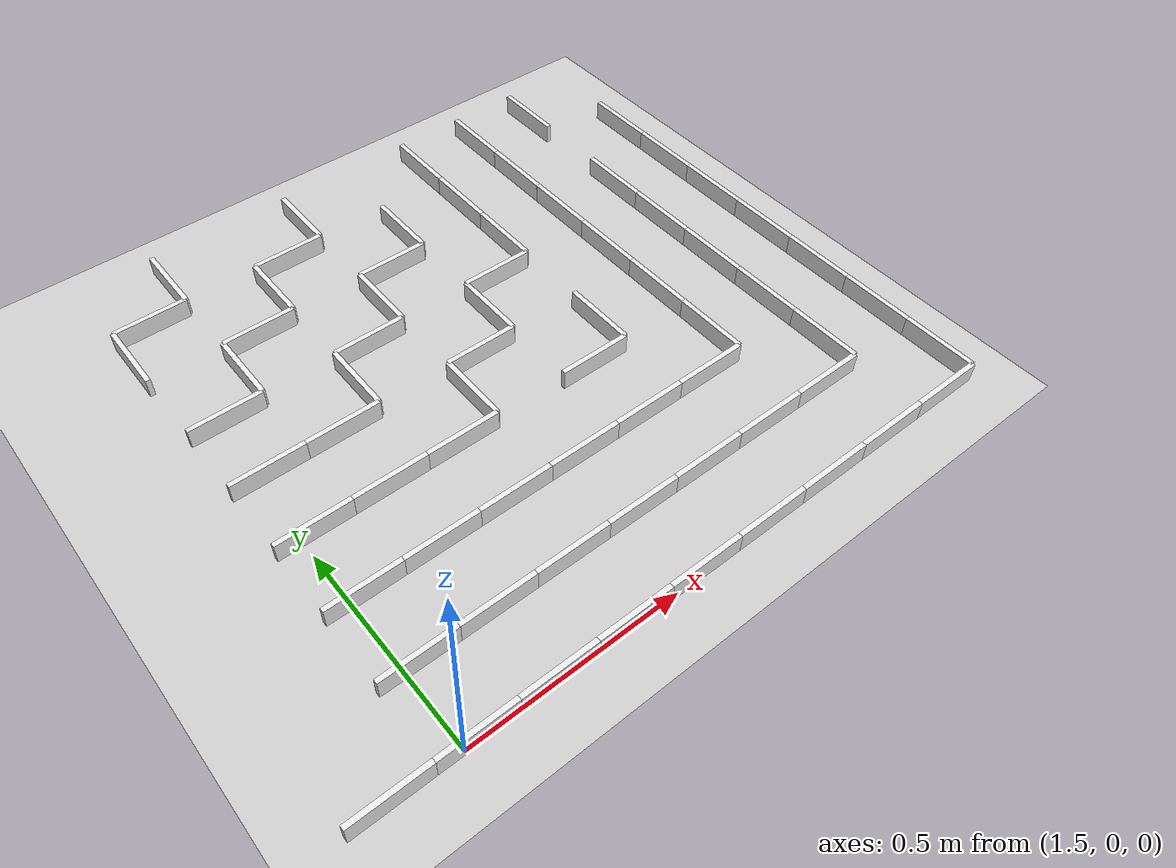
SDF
<sdf version="1.4">
 <world name="default">
  <include><uri>model://ground_plane</uri></include>
  <model name="wall">
   <pose>1.53 1.26 0.025 0 0 0</pose>
   <link name="link">
    <inertial>
     <mass>10</mass>
     <inertia><ixx>1</ixx><ixy>0</ixy><ixz>0</ixz><iyy>1</iyy><iyz>0</iyz><izz>1</izz></inertia>
    </inertial>
    <collision name="collision"><geometry><box><size>0.180 0.012 0.050</size></box></geometry></collision>
    <visual name="visual">
     <geometry><box><size>0.180 0.012 0.050</size></box></geometry>
     <material>
      <script><uri>file://media/materials/scripts/gazebo.material</uri><name>Gazebo/White</name></script>
     </material>
    </visual>
    <velocity_decay><linear>0</linear><angular>0</angular></velocity_decay>
   </link>
   <static>1</static>
  </model>
  <model name="wall">
   <pose>1.89 1.26 0.025 0 0 0</pose>
   <link name="link">
    <inertial>
     <mass>10</mass>
     <inertia><ixx>1</ixx><ixy>0</ixy><ixz>0</ixz><iyy>1</iyy><iyz>0</iyz><izz>1</izz></inertia>
    </inertial>
    <collision name="collision"><geometry><box><size>0.180 0.012 0.050</size></box></geometry></collision>
    <visual name="visual">
     <geometry><box><size>0.180 0.012 0.050</size></box></geometry>
     <material>
      <script><uri>file://media/materials/scripts/gazebo.material</uri><name>Gazebo/White</name></script>
     </material>
    </visual>
    <velocity_decay><linear>0</linear><angular>0</angular></velocity_decay>
   </link>
   <static>1</static>
  </model>
  <model name="wall">
   <pose>1.71 1.08 0.025 0 0 0</pose>
   <link name="link">
    <inertial>
     <mass>10</mass>
     <inertia><ixx>1</ixx><ixy>0</ixy><ixz>0</ixz><iyy>1</iyy><iyz>0</iyz><izz>1</izz></inertia>
    </inertial>
    <collision name="collision"><geometry><box><size>0.180 0.012 0.050</size></box></geometry></collision>
    <visual name="visual">
     <geometry><box><size>0.180 0.012 0.050</size></box></geometry>
     <material>
      <script><uri>file://media/materials/scripts/gazebo.material</uri><name>Gazebo/White</name></script>
     </material>
    </visual>
    <velocity_decay><linear>0</linear><angular>0</angular></velocity_decay>
   </link>
   <static>1</static>
  </model>
  <model name="wall">
   <pose>2.07 1.08 0.025 0 0 0</pose>
   <link name="link">
    <inertial>
     <mass>10</mass>
     <inertia><ixx>1</ixx><ixy>0</ixy><ixz>0</ixz><iyy>1</iyy><iyz>0</iyz><izz>1</izz></inertia>
    </inertial>
    <collision name="collision"><geometry><box><size>0.180 0.012 0.050</size></box></geometry></collision>
    <visual name="visual">
     <geometry><box><size>0.180 0.012 0.050</size></box></geometry>
     <material>
      <script><uri>file://media/materials/scripts/gazebo.material</uri><name>Gazebo/White</name></script>
     </material>
    </visual>
    <velocity_decay><linear>0</linear><angular>0</angular></velocity_decay>
   </link>
   <static>1</static>
  </model>
  <model name="wall">
   <pose>1.53 0.9 0.025 0 0 0</pose>
   <link name="link">
    <inertial>
     <mass>10</mass>
     <inertia><ixx>1</ixx><ixy>0</ixy><ixz>0</ixz><iyy>1</iyy><iyz>0</iyz><izz>1</izz></inertia>
    </inertial>
    <collision name="collision"><geometry><box><size>0.180 0.012 0.050</size></box></geometry></collision>
    <visual name="visual">
     <geometry><box><size>0.180 0.012 0.050</size></box></geometry>
     <material>
      <script><uri>file://media/materials/scripts/gazebo.material</uri><name>Gazebo/White</name></script>
     </material>
    </visual>
    <velocity_decay><linear>0</linear><angular>0</angular></velocity_decay>
   </link>
   <static>1</static>
  </model>
  <model name="wall">
   <pose>1.89 0.9 0.025 0 0 0</pose>
   <link name="link">
    <inertial>
     <mass>10</mass>
     <inertia><ixx>1</ixx><ixy>0</ixy><ixz>0</ixz><iyy>1</iyy><iyz>0</iyz><izz>1</izz></inertia>
    </inertial>
    <collision name="collision"><geometry><box><size>0.180 0.012 0.050</size></box></geometry></collision>
    <visual name="visual">
     <geometry><box><size>0.180 0.012 0.050</size></box></geometry>
     <material>
      <script><uri>file://media/materials/scripts/gazebo.material</uri><name>Gazebo/White</name></script>
     </material>
    </visual>
    <velocity_decay><linear>0</linear><angular>0</angular></velocity_decay>
   </link>
   <static>1</static>
  </model>
  <model name="wall">
   <pose>2.25 0.9 0.025 0 0 0</pose>
   <link name="link">
    <inertial>
     <mass>10</mass>
     <inertia><ixx>1</ixx><ixy>0</ixy><ixz>0</ixz><iyy>1</iyy><iyz>0</iyz><izz>1</izz></inertia>
    </inertial>
    <collision name="collision"><geometry><box><size>0.180 0.012 0.050</size></box></geometry></collision>
    <visual name="visual">
     <geometry><box><size>0.180 0.012 0.050</size></box></geometry>
     <material>
      <script><uri>file://media/materials/scripts/gazebo.material</uri><name>Gazebo/White</name></script>
     </material>
    </visual>
    <velocity_decay><linear>0</linear><angular>0</angular></velocity_decay>
   </link>
   <static>1</static>
  </model>
  <model name="wall">
   <pose>1.53 0.72 0.025 0 0 0</pose>
   <link name="link">
    <inertial>
     <mass>10</mass>
     <inertia><ixx>1</ixx><ixy>0</ixy><ixz>0</ixz><iyy>1</iyy><iyz>0</iyz><izz>1</izz></inertia>
    </inertial>
    <collision name="collision"><geometry><box><size>0.180 0.012 0.050</size></box></geometry></collision>
    <visual name="visual">
     <geometry><box><size>0.180 0.012 0.050</size></box></geometry>
     <material>
      <script><uri>file://media/materials/scripts/gazebo.material</uri><name>Gazebo/White</name></script>
     </material>
    </visual>
    <velocity_decay><linear>0</linear><angular>0</angular></velocity_decay>
   </link>
   <static>1</static>
  </model>
  <model name="wall">
   <pose>1.71 0.72 0.025 0 0 0</pose>
   <link name="link">
    <inertial>
     <mass>10</mass>
     <inertia><ixx>1</ixx><ixy>0</ixy><ixz>0</ixz><iyy>1</iyy><iyz>0</iyz><izz>1</izz></inertia>
    </inertial>
    <collision name="collision"><geometry><box><size>0.180 0.012 0.050</size></box></geometry></collision>
    <visual name="visual">
     <geometry><box><size>0.180 0.012 0.050</size></box></geometry>
     <material>
      <script><uri>file://media/materials/scripts/gazebo.material</uri><name>Gazebo/White</name></script>
     </material>
    </visual>
    <velocity_decay><linear>0</linear><angular>0</angular></velocity_decay>
   </link>
   <static>1</static>
  </model>
  <model name="wall">
   <pose>2.07 0.72 0.025 0 0 0</pose>
   <link name="link">
    <inertial>
     <mass>10</mass>
     <inertia><ixx>1</ixx><ixy>0</ixy><ixz>0</ixz><iyy>1</iyy><iyz>0</iyz><izz>1</izz></inertia>
    </inertial>
    <collision name="collision"><geometry><box><size>0.180 0.012 0.050</size></box></geometry></collision>
    <visual name="visual">
     <geometry><box><size>0.180 0.012 0.050</size></box></geometry>
     <material>
      <script><uri>file://media/materials/scripts/gazebo.material</uri><name>Gazebo/White</name></script>
     </material>
    </visual>
    <velocity_decay><linear>0</linear><angular>0</angular></velocity_decay>
   </link>
   <static>1</static>
  </model>
  <model name="wall">
   <pose>1.53 0.54 0.025 0 0 0</pose>
   <link name="link">
    <inertial>
     <mass>10</mass>
     <inertia><ixx>1</ixx><ixy>0</ixy><ixz>0</ixz><iyy>1</iyy><iyz>0</iyz><izz>1</izz></inertia>
    </inertial>
    <collision name="collision"><geometry><box><size>0.180 0.012 0.050</size></box></geometry></collision>
    <visual name="visual">
     <geometry><box><size>0.180 0.012 0.050</size></box></geometry>
     <material>
      <script><uri>file://media/materials/scripts/gazebo.material</uri><name>Gazebo/White</name></script>
     </material>
    </visual>
    <velocity_decay><linear>0</linear><angular>0</angular></velocity_decay>
   </link>
   <static>1</static>
  </model>
  <model name="wall">
   <pose>1.71 0.54 0.025 0 0 0</pose>
   <link name="link">
    <inertial>
     <mass>10</mass>
     <inertia><ixx>1</ixx><ixy>0</ixy><ixz>0</ixz><iyy>1</iyy><iyz>0</iyz><izz>1</izz></inertia>
    </inertial>
    <collision name="collision"><geometry><box><size>0.180 0.012 0.050</size></box></geometry></collision>
    <visual name="visual">
     <geometry><box><size>0.180 0.012 0.050</size></box></geometry>
     <material>
      <script><uri>file://media/materials/scripts/gazebo.material</uri><name>Gazebo/White</name></script>
     </material>
    </visual>
    <velocity_decay><linear>0</linear><angular>0</angular></velocity_decay>
   </link>
   <static>1</static>
  </model>
  <model name="wall">
   <pose>1.89 0.54 0.025 0 0 0</pose>
   <link name="link">
    <inertial>
     <mass>10</mass>
     <inertia><ixx>1</ixx><ixy>0</ixy><ixz>0</ixz><iyy>1</iyy><iyz>0</iyz><izz>1</izz></inertia>
    </inertial>
    <collision name="collision"><geometry><box><size>0.180 0.012 0.050</size></box></geometry></collision>
    <visual name="visual">
     <geometry><box><size>0.180 0.012 0.050</size></box></geometry>
     <material>
      <script><uri>file://media/materials/scripts/gazebo.material</uri><name>Gazebo/White</name></script>
     </material>
    </visual>
    <velocity_decay><linear>0</linear><angular>0</angular></velocity_decay>
   </link>
   <static>1</static>
  </model>
  <model name="wall">
   <pose>2.25 0.54 0.025 0 0 0</pose>
   <link name="link">
    <inertial>
     <mass>10</mass>
     <inertia><ixx>1</ixx><ixy>0</ixy><ixz>0</ixz><iyy>1</iyy><iyz>0</iyz><izz>1</izz></inertia>
    </inertial>
    <collision name="collision"><geometry><box><size>0.180 0.012 0.050</size></box></geometry></collision>
    <visual name="visual">
     <geometry><box><size>0.180 0.012 0.050</size></box></geometry>
     <material>
      <script><uri>file://media/materials/scripts/gazebo.material</uri><name>Gazebo/White</name></script>
     </material>
    </visual>
    <velocity_decay><linear>0</linear><angular>0</angular></velocity_decay>
   </link>
   <static>1</static>
  </model>
  <model name="wall">
   <pose>1.53 0.36 0.025 0 0 0</pose>
   <link name="link">
    <inertial>
     <mass>10</mass>
     <inertia><ixx>1</ixx><ixy>0</ixy><ixz>0</ixz><iyy>1</iyy><iyz>0</iyz><izz>1</izz></inertia>
    </inertial>
    <collision name="collision"><geometry><box><size>0.180 0.012 0.050</size></box></geometry></collision>
    <visual name="visual">
     <geometry><box><size>0.180 0.012 0.050</size></box></geometry>
     <material>
      <script><uri>file://media/materials/scripts/gazebo.material</uri><name>Gazebo/White</name></script>
     </material>
    </visual>
    <velocity_decay><linear>0</linear><angular>0</angular></velocity_decay>
   </link>
   <static>1</static>
  </model>
  <model name="wall">
   <pose>1.71 0.36 0.025 0 0 0</pose>
   <link name="link">
    <inertial>
     <mass>10</mass>
     <inertia><ixx>1</ixx><ixy>0</ixy><ixz>0</ixz><iyy>1</iyy><iyz>0</iyz><izz>1</izz></inertia>
    </inertial>
    <collision name="collision"><geometry><box><size>0.180 0.012 0.050</size></box></geometry></collision>
    <visual name="visual">
     <geometry><box><size>0.180 0.012 0.050</size></box></geometry>
     <material>
      <script><uri>file://media/materials/scripts/gazebo.material</uri><name>Gazebo/White</name></script>
     </material>
    </visual>
    <velocity_decay><linear>0</linear><angular>0</angular></velocity_decay>
   </link>
   <static>1</static>
  </model>
  <model name="wall">
   <pose>1.89 0.36 0.025 0 0 0</pose>
   <link name="link">
    <inertial>
     <mass>10</mass>
     <inertia><ixx>1</ixx><ixy>0</ixy><ixz>0</ixz><iyy>1</iyy><iyz>0</iyz><izz>1</izz></inertia>
    </inertial>
    <collision name="collision"><geometry><box><size>0.180 0.012 0.050</size></box></geometry></collision>
    <visual name="visual">
     <geometry><box><size>0.180 0.012 0.050</size></box></geometry>
     <material>
      <script><uri>file://media/materials/scripts/gazebo.material</uri><name>Gazebo/White</name></script>
     </material>
    </visual>
    <velocity_decay><linear>0</linear><angular>0</angular></velocity_decay>
   </link>
   <static>1</static>
  </model>
  <model name="wall">
   <pose>2.07 0.36 0.025 0 0 0</pose>
   <link name="link">
    <inertial>
     <mass>10</mass>
     <inertia><ixx>1</ixx><ixy>0</ixy><ixz>0</ixz><iyy>1</iyy><iyz>0</iyz><izz>1</izz></inertia>
    </inertial>
    <collision name="collision"><geometry><box><size>0.180 0.012 0.050</size></box></geometry></collision>
    <visual name="visual">
     <geometry><box><size>0.180 0.012 0.050</size></box></geometry>
     <material>
      <script><uri>file://media/materials/scripts/gazebo.material</uri><name>Gazebo/White</name></script>
     </material>
    </visual>
    <velocity_decay><linear>0</linear><angular>0</angular></velocity_decay>
   </link>
   <static>1</static>
  </model>
  <model name="wall">
   <pose>2.25 0.36 0.025 0 0 0</pose>
   <link name="link">
    <inertial>
     <mass>10</mass>
     <inertia><ixx>1</ixx><ixy>0</ixy><ixz>0</ixz><iyy>1</iyy><iyz>0</iyz><izz>1</izz></inertia>
    </inertial>
    <collision name="collision"><geometry><box><size>0.180 0.012 0.050</size></box></geometry></collision>
    <visual name="visual">
     <geometry><box><size>0.180 0.012 0.050</size></box></geometry>
     <material>
      <script><uri>file://media/materials/scripts/gazebo.material</uri><name>Gazebo/White</name></script>
     </material>
    </visual>
    <velocity_decay><linear>0</linear><angular>0</angular></velocity_decay>
   </link>
   <static>1</static>
  </model>
  <model name="wall">
   <pose>2.43 0.36 0.025 0 0 0</pose>
   <link name="link">
    <inertial>
     <mass>10</mass>
     <inertia><ixx>1</ixx><ixy>0</ixy><ixz>0</ixz><iyy>1</iyy><iyz>0</iyz><izz>1</izz></inertia>
    </inertial>
    <collision name="collision"><geometry><box><size>0.180 0.012 0.050</size></box></geometry></collision>
    <visual name="visual">
     <geometry><box><size>0.180 0.012 0.050</size></box></geometry>
     <material>
      <script><uri>file://media/materials/scripts/gazebo.material</uri><name>Gazebo/White</name></script>
     </material>
    </visual>
    <velocity_decay><linear>0</linear><angular>0</angular></velocity_decay>
   </link>
   <static>1</static>
  </model>
  <model name="wall">
   <pose>1.53 0.18 0.025 0 0 0</pose>
   <link name="link">
    <inertial>
     <mass>10</mass>
     <inertia><ixx>1</ixx><ixy>0</ixy><ixz>0</ixz><iyy>1</iyy><iyz>0</iyz><izz>1</izz></inertia>
    </inertial>
    <collision name="collision"><geometry><box><size>0.180 0.012 0.050</size></box></geometry></collision>
    <visual name="visual">
     <geometry><box><size>0.180 0.012 0.050</size></box></geometry>
     <material>
      <script><uri>file://media/materials/scripts/gazebo.material</uri><name>Gazebo/White</name></script>
     </material>
    </visual>
    <velocity_decay><linear>0</linear><angular>0</angular></velocity_decay>
   </link>
   <static>1</static>
  </model>
  <model name="wall">
   <pose>1.71 0.18 0.025 0 0 0</pose>
   <link name="link">
    <inertial>
     <mass>10</mass>
     <inertia><ixx>1</ixx><ixy>0</ixy><ixz>0</ixz><iyy>1</iyy><iyz>0</iyz><izz>1</izz></inertia>
    </inertial>
    <collision name="collision"><geometry><box><size>0.180 0.012 0.050</size></box></geometry></collision>
    <visual name="visual">
     <geometry><box><size>0.180 0.012 0.050</size></box></geometry>
     <material>
      <script><uri>file://media/materials/scripts/gazebo.material</uri><name>Gazebo/White</name></script>
     </material>
    </visual>
    <velocity_decay><linear>0</linear><angular>0</angular></velocity_decay>
   </link>
   <static>1</static>
  </model>
  <model name="wall">
   <pose>1.89 0.18 0.025 0 0 0</pose>
   <link name="link">
    <inertial>
     <mass>10</mass>
     <inertia><ixx>1</ixx><ixy>0</ixy><ixz>0</ixz><iyy>1</iyy><iyz>0</iyz><izz>1</izz></inertia>
    </inertial>
    <collision name="collision"><geometry><box><size>0.180 0.012 0.050</size></box></geometry></collision>
    <visual name="visual">
     <geometry><box><size>0.180 0.012 0.050</size></box></geometry>
     <material>
      <script><uri>file://media/materials/scripts/gazebo.material</uri><name>Gazebo/White</name></script>
     </material>
    </visual>
    <velocity_decay><linear>0</linear><angular>0</angular></velocity_decay>
   </link>
   <static>1</static>
  </model>
  <model name="wall">
   <pose>2.07 0.18 0.025 0 0 0</pose>
   <link name="link">
    <inertial>
     <mass>10</mass>
     <inertia><ixx>1</ixx><ixy>0</ixy><ixz>0</ixz><iyy>1</iyy><iyz>0</iyz><izz>1</izz></inertia>
    </inertial>
    <collision name="collision"><geometry><box><size>0.180 0.012 0.050</size></box></geometry></collision>
    <visual name="visual">
     <geometry><box><size>0.180 0.012 0.050</size></box></geometry>
     <material>
      <script><uri>file://media/materials/scripts/gazebo.material</uri><name>Gazebo/White</name></script>
     </material>
    </visual>
    <velocity_decay><linear>0</linear><angular>0</angular></velocity_decay>
   </link>
   <static>1</static>
  </model>
  <model name="wall">
   <pose>2.25 0.18 0.025 0 0 0</pose>
   <link name="link">
    <inertial>
     <mass>10</mass>
     <inertia><ixx>1</ixx><ixy>0</ixy><ixz>0</ixz><iyy>1</iyy><iyz>0</iyz><izz>1</izz></inertia>
    </inertial>
    <collision name="collision"><geometry><box><size>0.180 0.012 0.050</size></box></geometry></collision>
    <visual name="visual">
     <geometry><box><size>0.180 0.012 0.050</size></box></geometry>
     <material>
      <script><uri>file://media/materials/scripts/gazebo.material</uri><name>Gazebo/White</name></script>
     </material>
    </visual>
    <velocity_decay><linear>0</linear><angular>0</angular></velocity_decay>
   </link>
   <static>1</static>
  </model>
  <model name="wall">
   <pose>2.43 0.18 0.025 0 0 0</pose>
   <link name="link">
    <inertial>
     <mass>10</mass>
     <inertia><ixx>1</ixx><ixy>0</ixy><ixz>0</ixz><iyy>1</iyy><iyz>0</iyz><izz>1</izz></inertia>
    </inertial>
    <collision name="collision"><geometry><box><size>0.180 0.012 0.050</size></box></geometry></collision>
    <visual name="visual">
     <geometry><box><size>0.180 0.012 0.050</size></box></geometry>
     <material>
      <script><uri>file://media/materials/scripts/gazebo.material</uri><name>Gazebo/White</name></script>
     </material>
    </visual>
    <velocity_decay><linear>0</linear><angular>0</angular></velocity_decay>
   </link>
   <static>1</static>
  </model>
  <model name="wall">
   <pose>2.61 0.18 0.025 0 0 0</pose>
   <link name="link">
    <inertial>
     <mass>10</mass>
     <inertia><ixx>1</ixx><ixy>0</ixy><ixz>0</ixz><iyy>1</iyy><iyz>0</iyz><izz>1</izz></inertia>
    </inertial>
    <collision name="collision"><geometry><box><size>0.180 0.012 0.050</size></box></geometry></collision>
    <visual name="visual">
     <geometry><box><size>0.180 0.012 0.050</size></box></geometry>
     <material>
      <script><uri>file://media/materials/scripts/gazebo.material</uri><name>Gazebo/White</name></script>
     </material>
    </visual>
    <velocity_decay><linear>0</linear><angular>0</angular></velocity_decay>
   </link>
   <static>1</static>
  </model>
  <model name="wall">
   <pose>1.35 0.0 0.025 0 0 0</pose>
   <link name="link">
    <inertial>
     <mass>10</mass>
     <inertia><ixx>1</ixx><ixy>0</ixy><ixz>0</ixz><iyy>1</iyy><iyz>0</iyz><izz>1</izz></inertia>
    </inertial>
    <collision name="collision"><geometry><box><size>0.180 0.012 0.050</size></box></geometry></collision>
    <visual name="visual">
     <geometry><box><size>0.180 0.012 0.050</size></box></geometry>
     <material>
      <script><uri>file://media/materials/scripts/gazebo.material</uri><name>Gazebo/White</name></script>
     </material>
    </visual>
    <velocity_decay><linear>0</linear><angular>0</angular></velocity_decay>
   </link>
   <static>1</static>
  </model>
  <model name="wall">
   <pose>1.53 0.0 0.025 0 0 0</pose>
   <link name="link">
    <inertial>
     <mass>10</mass>
     <inertia><ixx>1</ixx><ixy>0</ixy><ixz>0</ixz><iyy>1</iyy><iyz>0</iyz><izz>1</izz></inertia>
    </inertial>
    <collision name="collision"><geometry><box><size>0.180 0.012 0.050</size></box></geometry></collision>
    <visual name="visual">
     <geometry><box><size>0.180 0.012 0.050</size></box></geometry>
     <material>
      <script><uri>file://media/materials/scripts/gazebo.material</uri><name>Gazebo/White</name></script>
     </material>
    </visual>
    <velocity_decay><linear>0</linear><angular>0</angular></velocity_decay>
   </link>
   <static>1</static>
  </model>
  <model name="wall">
   <pose>1.71 0.0 0.025 0 0 0</pose>
   <link name="link">
    <inertial>
     <mass>10</mass>
     <inertia><ixx>1</ixx><ixy>0</ixy><ixz>0</ixz><iyy>1</iyy><iyz>0</iyz><izz>1</izz></inertia>
    </inertial>
    <collision name="collision"><geometry><box><size>0.180 0.012 0.050</size></box></geometry></collision>
    <visual name="visual">
     <geometry><box><size>0.180 0.012 0.050</size></box></geometry>
     <material>
      <script><uri>file://media/materials/scripts/gazebo.material</uri><name>Gazebo/White</name></script>
     </material>
    </visual>
    <velocity_decay><linear>0</linear><angular>0</angular></velocity_decay>
   </link>
   <static>1</static>
  </model>
  <model name="wall">
   <pose>1.89 0.0 0.025 0 0 0</pose>
   <link name="link">
    <inertial>
     <mass>10</mass>
     <inertia><ixx>1</ixx><ixy>0</ixy><ixz>0</ixz><iyy>1</iyy><iyz>0</iyz><izz>1</izz></inertia>
    </inertial>
    <collision name="collision"><geometry><box><size>0.180 0.012 0.050</size></box></geometry></collision>
    <visual name="visual">
     <geometry><box><size>0.180 0.012 0.050</size></box></geometry>
     <material>
      <script><uri>file://media/materials/scripts/gazebo.material</uri><name>Gazebo/White</name></script>
     </material>
    </visual>
    <velocity_decay><linear>0</linear><angular>0</angular></velocity_decay>
   </link>
   <static>1</static>
  </model>
  <model name="wall">
   <pose>2.07 0.0 0.025 0 0 0</pose>
   <link name="link">
    <inertial>
     <mass>10</mass>
     <inertia><ixx>1</ixx><ixy>0</ixy><ixz>0</ixz><iyy>1</iyy><iyz>0</iyz><izz>1</izz></inertia>
    </inertial>
    <collision name="collision"><geometry><box><size>0.180 0.012 0.050</size></box></geometry></collision>
    <visual name="visual">
     <geometry><box><size>0.180 0.012 0.050</size></box></geometry>
     <material>
      <script><uri>file://media/materials/scripts/gazebo.material</uri><name>Gazebo/White</name></script>
     </material>
    </visual>
    <velocity_decay><linear>0</linear><angular>0</angular></velocity_decay>
   </link>
   <static>1</static>
  </model>
  <model name="wall">
   <pose>2.25 0.0 0.025 0 0 0</pose>
   <link name="link">
    <inertial>
     <mass>10</mass>
     <inertia><ixx>1</ixx><ixy>0</ixy><ixz>0</ixz><iyy>1</iyy><iyz>0</iyz><izz>1</izz></inertia>
    </inertial>
    <collision name="collision"><geometry><box><size>0.180 0.012 0.050</size></box></geometry></collision>
    <visual name="visual">
     <geometry><box><size>0.180 0.012 0.050</size></box></geometry>
     <material>
      <script><uri>file://media/materials/scripts/gazebo.material</uri><name>Gazebo/White</name></script>
     </material>
    </visual>
    <velocity_decay><linear>0</linear><angular>0</angular></velocity_decay>
   </link>
   <static>1</static>
  </model>
  <model name="wall">
   <pose>2.43 0.0 0.025 0 0 0</pose>
   <link name="link">
    <inertial>
     <mass>10</mass>
     <inertia><ixx>1</ixx><ixy>0</ixy><ixz>0</ixz><iyy>1</iyy><iyz>0</iyz><izz>1</izz></inertia>
    </inertial>
    <collision name="collision"><geometry><box><size>0.180 0.012 0.050</size></box></geometry></collision>
    <visual name="visual">
     <geometry><box><size>0.180 0.012 0.050</size></box></geometry>
     <material>
      <script><uri>file://media/materials/scripts/gazebo.material</uri><name>Gazebo/White</name></script>
     </material>
    </visual>
    <velocity_decay><linear>0</linear><angular>0</angular></velocity_decay>
   </link>
   <static>1</static>
  </model>
  <model name="wall">
   <pose>2.61 0.0 0.025 0 0 0</pose>
   <link name="link">
    <inertial>
     <mass>10</mass>
     <inertia><ixx>1</ixx><ixy>0</ixy><ixz>0</ixz><iyy>1</iyy><iyz>0</iyz><izz>1</izz></inertia>
    </inertial>
    <collision name="collision"><geometry><box><size>0.180 0.012 0.050</size></box></geometry></collision>
    <visual name="visual">
     <geometry><box><size>0.180 0.012 0.050</size></box></geometry>
     <material>
      <script><uri>file://media/materials/scripts/gazebo.material</uri><name>Gazebo/White</name></script>
     </material>
    </visual>
    <velocity_decay><linear>0</linear><angular>0</angular></velocity_decay>
   </link>
   <static>1</static>
  </model>
  <model name="wall">
   <pose>2.79 0.0 0.025 0 0 0</pose>
   <link name="link">
    <inertial>
     <mass>10</mass>
     <inertia><ixx>1</ixx><ixy>0</ixy><ixz>0</ixz><iyy>1</iyy><iyz>0</iyz><izz>1</izz></inertia>
    </inertial>
    <collision name="collision"><geometry><box><size>0.180 0.012 0.050</size></box></geometry></collision>
    <visual name="visual">
     <geometry><box><size>0.180 0.012 0.050</size></box></geometry>
     <material>
      <script><uri>file://media/materials/scripts/gazebo.material</uri><name>Gazebo/White</name></script>
     </material>
    </visual>
    <velocity_decay><linear>0</linear><angular>0</angular></velocity_decay>
   </link>
   <static>1</static>
  </model>
  <model name="wall">
   <pose>1.62 1.35 0.025 0 0 1.57</pose>
   <link name="link">
    <inertial>
     <mass>10</mass>
     <inertia><ixx>1</ixx><ixy>0</ixy><ixz>0</ixz><iyy>1</iyy><iyz>0</iyz><izz>1</izz></inertia>
    </inertial>
    <collision name="collision"><geometry><box><size>0.180 0.012 0.050</size></box></geometry></collision>
    <visual name="visual">
     <geometry><box><size>0.180 0.012 0.050</size></box></geometry>
     <material>
      <script><uri>file://media/materials/scripts/gazebo.material</uri><name>Gazebo/White</name></script>
     </material>
    </visual>
    <velocity_decay><linear>0</linear><angular>0</angular></velocity_decay>
   </link>
   <static>1</static>
  </model>
  <model name="wall">
   <pose>1.98 1.35 0.025 0 0 1.57</pose>
   <link name="link">
    <inertial>
     <mass>10</mass>
     <inertia><ixx>1</ixx><ixy>0</ixy><ixz>0</ixz><iyy>1</iyy><iyz>0</iyz><izz>1</izz></inertia>
    </inertial>
    <collision name="collision"><geometry><box><size>0.180 0.012 0.050</size></box></geometry></collision>
    <visual name="visual">
     <geometry><box><size>0.180 0.012 0.050</size></box></geometry>
     <material>
      <script><uri>file://media/materials/scripts/gazebo.material</uri><name>Gazebo/White</name></script>
     </material>
    </visual>
    <velocity_decay><linear>0</linear><angular>0</angular></velocity_decay>
   </link>
   <static>1</static>
  </model>
  <model name="wall">
   <pose>2.34 1.35 0.025 0 0 1.57</pose>
   <link name="link">
    <inertial>
     <mass>10</mass>
     <inertia><ixx>1</ixx><ixy>0</ixy><ixz>0</ixz><iyy>1</iyy><iyz>0</iyz><izz>1</izz></inertia>
    </inertial>
    <collision name="collision"><geometry><box><size>0.180 0.012 0.050</size></box></geometry></collision>
    <visual name="visual">
     <geometry><box><size>0.180 0.012 0.050</size></box></geometry>
     <material>
      <script><uri>file://media/materials/scripts/gazebo.material</uri><name>Gazebo/White</name></script>
     </material>
    </visual>
    <velocity_decay><linear>0</linear><angular>0</angular></velocity_decay>
   </link>
   <static>1</static>
  </model>
  <model name="wall">
   <pose>2.52 1.35 0.025 0 0 1.57</pose>
   <link name="link">
    <inertial>
     <mass>10</mass>
     <inertia><ixx>1</ixx><ixy>0</ixy><ixz>0</ixz><iyy>1</iyy><iyz>0</iyz><izz>1</izz></inertia>
    </inertial>
    <collision name="collision"><geometry><box><size>0.180 0.012 0.050</size></box></geometry></collision>
    <visual name="visual">
     <geometry><box><size>0.180 0.012 0.050</size></box></geometry>
     <material>
      <script><uri>file://media/materials/scripts/gazebo.material</uri><name>Gazebo/White</name></script>
     </material>
    </visual>
    <velocity_decay><linear>0</linear><angular>0</angular></velocity_decay>
   </link>
   <static>1</static>
  </model>
  <model name="wall">
   <pose>2.7 1.35 0.025 0 0 1.57</pose>
   <link name="link">
    <inertial>
     <mass>10</mass>
     <inertia><ixx>1</ixx><ixy>0</ixy><ixz>0</ixz><iyy>1</iyy><iyz>0</iyz><izz>1</izz></inertia>
    </inertial>
    <collision name="collision"><geometry><box><size>0.180 0.012 0.050</size></box></geometry></collision>
    <visual name="visual">
     <geometry><box><size>0.180 0.012 0.050</size></box></geometry>
     <material>
      <script><uri>file://media/materials/scripts/gazebo.material</uri><name>Gazebo/White</name></script>
     </material>
    </visual>
    <velocity_decay><linear>0</linear><angular>0</angular></velocity_decay>
   </link>
   <static>1</static>
  </model>
  <model name="wall">
   <pose>1.44 1.17 0.025 0 0 1.57</pose>
   <link name="link">
    <inertial>
     <mass>10</mass>
     <inertia><ixx>1</ixx><ixy>0</ixy><ixz>0</ixz><iyy>1</iyy><iyz>0</iyz><izz>1</izz></inertia>
    </inertial>
    <collision name="collision"><geometry><box><size>0.180 0.012 0.050</size></box></geometry></collision>
    <visual name="visual">
     <geometry><box><size>0.180 0.012 0.050</size></box></geometry>
     <material>
      <script><uri>file://media/materials/scripts/gazebo.material</uri><name>Gazebo/White</name></script>
     </material>
    </visual>
    <velocity_decay><linear>0</linear><angular>0</angular></velocity_decay>
   </link>
   <static>1</static>
  </model>
  <model name="wall">
   <pose>1.8 1.17 0.025 0 0 1.57</pose>
   <link name="link">
    <inertial>
     <mass>10</mass>
     <inertia><ixx>1</ixx><ixy>0</ixy><ixz>0</ixz><iyy>1</iyy><iyz>0</iyz><izz>1</izz></inertia>
    </inertial>
    <collision name="collision"><geometry><box><size>0.180 0.012 0.050</size></box></geometry></collision>
    <visual name="visual">
     <geometry><box><size>0.180 0.012 0.050</size></box></geometry>
     <material>
      <script><uri>file://media/materials/scripts/gazebo.material</uri><name>Gazebo/White</name></script>
     </material>
    </visual>
    <velocity_decay><linear>0</linear><angular>0</angular></velocity_decay>
   </link>
   <static>1</static>
  </model>
  <model name="wall">
   <pose>2.16 1.17 0.025 0 0 1.57</pose>
   <link name="link">
    <inertial>
     <mass>10</mass>
     <inertia><ixx>1</ixx><ixy>0</ixy><ixz>0</ixz><iyy>1</iyy><iyz>0</iyz><izz>1</izz></inertia>
    </inertial>
    <collision name="collision"><geometry><box><size>0.180 0.012 0.050</size></box></geometry></collision>
    <visual name="visual">
     <geometry><box><size>0.180 0.012 0.050</size></box></geometry>
     <material>
      <script><uri>file://media/materials/scripts/gazebo.material</uri><name>Gazebo/White</name></script>
     </material>
    </visual>
    <velocity_decay><linear>0</linear><angular>0</angular></velocity_decay>
   </link>
   <static>1</static>
  </model>
  <model name="wall">
   <pose>2.34 1.17 0.025 0 0 1.57</pose>
   <link name="link">
    <inertial>
     <mass>10</mass>
     <inertia><ixx>1</ixx><ixy>0</ixy><ixz>0</ixz><iyy>1</iyy><iyz>0</iyz><izz>1</izz></inertia>
    </inertial>
    <collision name="collision"><geometry><box><size>0.180 0.012 0.050</size></box></geometry></collision>
    <visual name="visual">
     <geometry><box><size>0.180 0.012 0.050</size></box></geometry>
     <material>
      <script><uri>file://media/materials/scripts/gazebo.material</uri><name>Gazebo/White</name></script>
     </material>
    </visual>
    <velocity_decay><linear>0</linear><angular>0</angular></velocity_decay>
   </link>
   <static>1</static>
  </model>
  <model name="wall">
   <pose>2.52 1.17 0.025 0 0 1.57</pose>
   <link name="link">
    <inertial>
     <mass>10</mass>
     <inertia><ixx>1</ixx><ixy>0</ixy><ixz>0</ixz><iyy>1</iyy><iyz>0</iyz><izz>1</izz></inertia>
    </inertial>
    <collision name="collision"><geometry><box><size>0.180 0.012 0.050</size></box></geometry></collision>
    <visual name="visual">
     <geometry><box><size>0.180 0.012 0.050</size></box></geometry>
     <material>
      <script><uri>file://media/materials/scripts/gazebo.material</uri><name>Gazebo/White</name></script>
     </material>
    </visual>
    <velocity_decay><linear>0</linear><angular>0</angular></velocity_decay>
   </link>
   <static>1</static>
  </model>
  <model name="wall">
   <pose>2.88 1.17 0.025 0 0 1.57</pose>
   <link name="link">
    <inertial>
     <mass>10</mass>
     <inertia><ixx>1</ixx><ixy>0</ixy><ixz>0</ixz><iyy>1</iyy><iyz>0</iyz><izz>1</izz></inertia>
    </inertial>
    <collision name="collision"><geometry><box><size>0.180 0.012 0.050</size></box></geometry></collision>
    <visual name="visual">
     <geometry><box><size>0.180 0.012 0.050</size></box></geometry>
     <material>
      <script><uri>file://media/materials/scripts/gazebo.material</uri><name>Gazebo/White</name></script>
     </material>
    </visual>
    <velocity_decay><linear>0</linear><angular>0</angular></velocity_decay>
   </link>
   <static>1</static>
  </model>
  <model name="wall">
   <pose>1.62 0.99 0.025 0 0 1.57</pose>
   <link name="link">
    <inertial>
     <mass>10</mass>
     <inertia><ixx>1</ixx><ixy>0</ixy><ixz>0</ixz><iyy>1</iyy><iyz>0</iyz><izz>1</izz></inertia>
    </inertial>
    <collision name="collision"><geometry><box><size>0.180 0.012 0.050</size></box></geometry></collision>
    <visual name="visual">
     <geometry><box><size>0.180 0.012 0.050</size></box></geometry>
     <material>
      <script><uri>file://media/materials/scripts/gazebo.material</uri><name>Gazebo/White</name></script>
     </material>
    </visual>
    <velocity_decay><linear>0</linear><angular>0</angular></velocity_decay>
   </link>
   <static>1</static>
  </model>
  <model name="wall">
   <pose>1.98 0.99 0.025 0 0 1.57</pose>
   <link name="link">
    <inertial>
     <mass>10</mass>
     <inertia><ixx>1</ixx><ixy>0</ixy><ixz>0</ixz><iyy>1</iyy><iyz>0</iyz><izz>1</izz></inertia>
    </inertial>
    <collision name="collision"><geometry><box><size>0.180 0.012 0.050</size></box></geometry></collision>
    <visual name="visual">
     <geometry><box><size>0.180 0.012 0.050</size></box></geometry>
     <material>
      <script><uri>file://media/materials/scripts/gazebo.material</uri><name>Gazebo/White</name></script>
     </material>
    </visual>
    <velocity_decay><linear>0</linear><angular>0</angular></velocity_decay>
   </link>
   <static>1</static>
  </model>
  <model name="wall">
   <pose>2.34 0.99 0.025 0 0 1.57</pose>
   <link name="link">
    <inertial>
     <mass>10</mass>
     <inertia><ixx>1</ixx><ixy>0</ixy><ixz>0</ixz><iyy>1</iyy><iyz>0</iyz><izz>1</izz></inertia>
    </inertial>
    <collision name="collision"><geometry><box><size>0.180 0.012 0.050</size></box></geometry></collision>
    <visual name="visual">
     <geometry><box><size>0.180 0.012 0.050</size></box></geometry>
     <material>
      <script><uri>file://media/materials/scripts/gazebo.material</uri><name>Gazebo/White</name></script>
     </material>
    </visual>
    <velocity_decay><linear>0</linear><angular>0</angular></velocity_decay>
   </link>
   <static>1</static>
  </model>
  <model name="wall">
   <pose>2.52 0.99 0.025 0 0 1.57</pose>
   <link name="link">
    <inertial>
     <mass>10</mass>
     <inertia><ixx>1</ixx><ixy>0</ixy><ixz>0</ixz><iyy>1</iyy><iyz>0</iyz><izz>1</izz></inertia>
    </inertial>
    <collision name="collision"><geometry><box><size>0.180 0.012 0.050</size></box></geometry></collision>
    <visual name="visual">
     <geometry><box><size>0.180 0.012 0.050</size></box></geometry>
     <material>
      <script><uri>file://media/materials/scripts/gazebo.material</uri><name>Gazebo/White</name></script>
     </material>
    </visual>
    <velocity_decay><linear>0</linear><angular>0</angular></velocity_decay>
   </link>
   <static>1</static>
  </model>
  <model name="wall">
   <pose>2.7 0.99 0.025 0 0 1.57</pose>
   <link name="link">
    <inertial>
     <mass>10</mass>
     <inertia><ixx>1</ixx><ixy>0</ixy><ixz>0</ixz><iyy>1</iyy><iyz>0</iyz><izz>1</izz></inertia>
    </inertial>
    <collision name="collision"><geometry><box><size>0.180 0.012 0.050</size></box></geometry></collision>
    <visual name="visual">
     <geometry><box><size>0.180 0.012 0.050</size></box></geometry>
     <material>
      <script><uri>file://media/materials/scripts/gazebo.material</uri><name>Gazebo/White</name></script>
     </material>
    </visual>
    <velocity_decay><linear>0</linear><angular>0</angular></velocity_decay>
   </link>
   <static>1</static>
  </model>
  <model name="wall">
   <pose>2.88 0.99 0.025 0 0 1.57</pose>
   <link name="link">
    <inertial>
     <mass>10</mass>
     <inertia><ixx>1</ixx><ixy>0</ixy><ixz>0</ixz><iyy>1</iyy><iyz>0</iyz><izz>1</izz></inertia>
    </inertial>
    <collision name="collision"><geometry><box><size>0.180 0.012 0.050</size></box></geometry></collision>
    <visual name="visual">
     <geometry><box><size>0.180 0.012 0.050</size></box></geometry>
     <material>
      <script><uri>file://media/materials/scripts/gazebo.material</uri><name>Gazebo/White</name></script>
     </material>
    </visual>
    <velocity_decay><linear>0</linear><angular>0</angular></velocity_decay>
   </link>
   <static>1</static>
  </model>
  <model name="wall">
   <pose>1.8 0.81 0.025 0 0 1.57</pose>
   <link name="link">
    <inertial>
     <mass>10</mass>
     <inertia><ixx>1</ixx><ixy>0</ixy><ixz>0</ixz><iyy>1</iyy><iyz>0</iyz><izz>1</izz></inertia>
    </inertial>
    <collision name="collision"><geometry><box><size>0.180 0.012 0.050</size></box></geometry></collision>
    <visual name="visual">
     <geometry><box><size>0.180 0.012 0.050</size></box></geometry>
     <material>
      <script><uri>file://media/materials/scripts/gazebo.material</uri><name>Gazebo/White</name></script>
     </material>
    </visual>
    <velocity_decay><linear>0</linear><angular>0</angular></velocity_decay>
   </link>
   <static>1</static>
  </model>
  <model name="wall">
   <pose>2.16 0.81 0.025 0 0 1.57</pose>
   <link name="link">
    <inertial>
     <mass>10</mass>
     <inertia><ixx>1</ixx><ixy>0</ixy><ixz>0</ixz><iyy>1</iyy><iyz>0</iyz><izz>1</izz></inertia>
    </inertial>
    <collision name="collision"><geometry><box><size>0.180 0.012 0.050</size></box></geometry></collision>
    <visual name="visual">
     <geometry><box><size>0.180 0.012 0.050</size></box></geometry>
     <material>
      <script><uri>file://media/materials/scripts/gazebo.material</uri><name>Gazebo/White</name></script>
     </material>
    </visual>
    <velocity_decay><linear>0</linear><angular>0</angular></velocity_decay>
   </link>
   <static>1</static>
  </model>
  <model name="wall">
   <pose>2.52 0.81 0.025 0 0 1.57</pose>
   <link name="link">
    <inertial>
     <mass>10</mass>
     <inertia><ixx>1</ixx><ixy>0</ixy><ixz>0</ixz><iyy>1</iyy><iyz>0</iyz><izz>1</izz></inertia>
    </inertial>
    <collision name="collision"><geometry><box><size>0.180 0.012 0.050</size></box></geometry></collision>
    <visual name="visual">
     <geometry><box><size>0.180 0.012 0.050</size></box></geometry>
     <material>
      <script><uri>file://media/materials/scripts/gazebo.material</uri><name>Gazebo/White</name></script>
     </material>
    </visual>
    <velocity_decay><linear>0</linear><angular>0</angular></velocity_decay>
   </link>
   <static>1</static>
  </model>
  <model name="wall">
   <pose>2.7 0.81 0.025 0 0 1.57</pose>
   <link name="link">
    <inertial>
     <mass>10</mass>
     <inertia><ixx>1</ixx><ixy>0</ixy><ixz>0</ixz><iyy>1</iyy><iyz>0</iyz><izz>1</izz></inertia>
    </inertial>
    <collision name="collision"><geometry><box><size>0.180 0.012 0.050</size></box></geometry></collision>
    <visual name="visual">
     <geometry><box><size>0.180 0.012 0.050</size></box></geometry>
     <material>
      <script><uri>file://media/materials/scripts/gazebo.material</uri><name>Gazebo/White</name></script>
     </material>
    </visual>
    <velocity_decay><linear>0</linear><angular>0</angular></velocity_decay>
   </link>
   <static>1</static>
  </model>
  <model name="wall">
   <pose>2.88 0.81 0.025 0 0 1.57</pose>
   <link name="link">
    <inertial>
     <mass>10</mass>
     <inertia><ixx>1</ixx><ixy>0</ixy><ixz>0</ixz><iyy>1</iyy><iyz>0</iyz><izz>1</izz></inertia>
    </inertial>
    <collision name="collision"><geometry><box><size>0.180 0.012 0.050</size></box></geometry></collision>
    <visual name="visual">
     <geometry><box><size>0.180 0.012 0.050</size></box></geometry>
     <material>
      <script><uri>file://media/materials/scripts/gazebo.material</uri><name>Gazebo/White</name></script>
     </material>
    </visual>
    <velocity_decay><linear>0</linear><angular>0</angular></velocity_decay>
   </link>
   <static>1</static>
  </model>
  <model name="wall">
   <pose>1.98 0.63 0.025 0 0 1.57</pose>
   <link name="link">
    <inertial>
     <mass>10</mass>
     <inertia><ixx>1</ixx><ixy>0</ixy><ixz>0</ixz><iyy>1</iyy><iyz>0</iyz><izz>1</izz></inertia>
    </inertial>
    <collision name="collision"><geometry><box><size>0.180 0.012 0.050</size></box></geometry></collision>
    <visual name="visual">
     <geometry><box><size>0.180 0.012 0.050</size></box></geometry>
     <material>
      <script><uri>file://media/materials/scripts/gazebo.material</uri><name>Gazebo/White</name></script>
     </material>
    </visual>
    <velocity_decay><linear>0</linear><angular>0</angular></velocity_decay>
   </link>
   <static>1</static>
  </model>
  <model name="wall">
   <pose>2.34 0.63 0.025 0 0 1.57</pose>
   <link name="link">
    <inertial>
     <mass>10</mass>
     <inertia><ixx>1</ixx><ixy>0</ixy><ixz>0</ixz><iyy>1</iyy><iyz>0</iyz><izz>1</izz></inertia>
    </inertial>
    <collision name="collision"><geometry><box><size>0.180 0.012 0.050</size></box></geometry></collision>
    <visual name="visual">
     <geometry><box><size>0.180 0.012 0.050</size></box></geometry>
     <material>
      <script><uri>file://media/materials/scripts/gazebo.material</uri><name>Gazebo/White</name></script>
     </material>
    </visual>
    <velocity_decay><linear>0</linear><angular>0</angular></velocity_decay>
   </link>
   <static>1</static>
  </model>
  <model name="wall">
   <pose>2.52 0.63 0.025 0 0 1.57</pose>
   <link name="link">
    <inertial>
     <mass>10</mass>
     <inertia><ixx>1</ixx><ixy>0</ixy><ixz>0</ixz><iyy>1</iyy><iyz>0</iyz><izz>1</izz></inertia>
    </inertial>
    <collision name="collision"><geometry><box><size>0.180 0.012 0.050</size></box></geometry></collision>
    <visual name="visual">
     <geometry><box><size>0.180 0.012 0.050</size></box></geometry>
     <material>
      <script><uri>file://media/materials/scripts/gazebo.material</uri><name>Gazebo/White</name></script>
     </material>
    </visual>
    <velocity_decay><linear>0</linear><angular>0</angular></velocity_decay>
   </link>
   <static>1</static>
  </model>
  <model name="wall">
   <pose>2.7 0.63 0.025 0 0 1.57</pose>
   <link name="link">
    <inertial>
     <mass>10</mass>
     <inertia><ixx>1</ixx><ixy>0</ixy><ixz>0</ixz><iyy>1</iyy><iyz>0</iyz><izz>1</izz></inertia>
    </inertial>
    <collision name="collision"><geometry><box><size>0.180 0.012 0.050</size></box></geometry></collision>
    <visual name="visual">
     <geometry><box><size>0.180 0.012 0.050</size></box></geometry>
     <material>
      <script><uri>file://media/materials/scripts/gazebo.material</uri><name>Gazebo/White</name></script>
     </material>
    </visual>
    <velocity_decay><linear>0</linear><angular>0</angular></velocity_decay>
   </link>
   <static>1</static>
  </model>
  <model name="wall">
   <pose>2.88 0.63 0.025 0 0 1.57</pose>
   <link name="link">
    <inertial>
     <mass>10</mass>
     <inertia><ixx>1</ixx><ixy>0</ixy><ixz>0</ixz><iyy>1</iyy><iyz>0</iyz><izz>1</izz></inertia>
    </inertial>
    <collision name="collision"><geometry><box><size>0.180 0.012 0.050</size></box></geometry></collision>
    <visual name="visual">
     <geometry><box><size>0.180 0.012 0.050</size></box></geometry>
     <material>
      <script><uri>file://media/materials/scripts/gazebo.material</uri><name>Gazebo/White</name></script>
     </material>
    </visual>
    <velocity_decay><linear>0</linear><angular>0</angular></velocity_decay>
   </link>
   <static>1</static>
  </model>
  <model name="wall">
   <pose>2.52 0.45 0.025 0 0 1.57</pose>
   <link name="link">
    <inertial>
     <mass>10</mass>
     <inertia><ixx>1</ixx><ixy>0</ixy><ixz>0</ixz><iyy>1</iyy><iyz>0</iyz><izz>1</izz></inertia>
    </inertial>
    <collision name="collision"><geometry><box><size>0.180 0.012 0.050</size></box></geometry></collision>
    <visual name="visual">
     <geometry><box><size>0.180 0.012 0.050</size></box></geometry>
     <material>
      <script><uri>file://media/materials/scripts/gazebo.material</uri><name>Gazebo/White</name></script>
     </material>
    </visual>
    <velocity_decay><linear>0</linear><angular>0</angular></velocity_decay>
   </link>
   <static>1</static>
  </model>
  <model name="wall">
   <pose>2.7 0.45 0.025 0 0 1.57</pose>
   <link name="link">
    <inertial>
     <mass>10</mass>
     <inertia><ixx>1</ixx><ixy>0</ixy><ixz>0</ixz><iyy>1</iyy><iyz>0</iyz><izz>1</izz></inertia>
    </inertial>
    <collision name="collision"><geometry><box><size>0.180 0.012 0.050</size></box></geometry></collision>
    <visual name="visual">
     <geometry><box><size>0.180 0.012 0.050</size></box></geometry>
     <material>
      <script><uri>file://media/materials/scripts/gazebo.material</uri><name>Gazebo/White</name></script>
     </material>
    </visual>
    <velocity_decay><linear>0</linear><angular>0</angular></velocity_decay>
   </link>
   <static>1</static>
  </model>
  <model name="wall">
   <pose>2.88 0.45 0.025 0 0 1.57</pose>
   <link name="link">
    <inertial>
     <mass>10</mass>
     <inertia><ixx>1</ixx><ixy>0</ixy><ixz>0</ixz><iyy>1</iyy><iyz>0</iyz><izz>1</izz></inertia>
    </inertial>
    <collision name="collision"><geometry><box><size>0.180 0.012 0.050</size></box></geometry></collision>
    <visual name="visual">
     <geometry><box><size>0.180 0.012 0.050</size></box></geometry>
     <material>
      <script><uri>file://media/materials/scripts/gazebo.material</uri><name>Gazebo/White</name></script>
     </material>
    </visual>
    <velocity_decay><linear>0</linear><angular>0</angular></velocity_decay>
   </link>
   <static>1</static>
  </model>
  <model name="wall">
   <pose>2.7 0.27 0.025 0 0 1.57</pose>
   <link name="link">
    <inertial>
     <mass>10</mass>
     <inertia><ixx>1</ixx><ixy>0</ixy><ixz>0</ixz><iyy>1</iyy><iyz>0</iyz><izz>1</izz></inertia>
    </inertial>
    <collision name="collision"><geometry><box><size>0.180 0.012 0.050</size></box></geometry></collision>
    <visual name="visual">
     <geometry><box><size>0.180 0.012 0.050</size></box></geometry>
     <material>
      <script><uri>file://media/materials/scripts/gazebo.material</uri><name>Gazebo/White</name></script>
     </material>
    </visual>
    <velocity_decay><linear>0</linear><angular>0</angular></velocity_decay>
   </link>
   <static>1</static>
  </model>
  <model name="wall">
   <pose>2.88 0.27 0.025 0 0 1.57</pose>
   <link name="link">
    <inertial>
     <mass>10</mass>
     <inertia><ixx>1</ixx><ixy>0</ixy><ixz>0</ixz><iyy>1</iyy><iyz>0</iyz><izz>1</izz></inertia>
    </inertial>
    <collision name="collision"><geometry><box><size>0.180 0.012 0.050</size></box></geometry></collision>
    <visual name="visual">
     <geometry><box><size>0.180 0.012 0.050</size></box></geometry>
     <material>
      <script><uri>file://media/materials/scripts/gazebo.material</uri><name>Gazebo/White</name></script>
     </material>
    </visual>
    <velocity_decay><linear>0</linear><angular>0</angular></velocity_decay>
   </link>
   <static>1</static>
  </model>
  <model name="wall">
   <pose>2.88 0.09 0.025 0 0 1.57</pose>
   <link name="link">
    <inertial>
     <mass>10</mass>
     <inertia><ixx>1</ixx><ixy>0</ixy><ixz>0</ixz><iyy>1</iyy><iyz>0</iyz><izz>1</izz></inertia>
    </inertial>
    <collision name="collision"><geometry><box><size>0.180 0.012 0.050</size></box></geometry></collision>
    <visual name="visual">
     <geometry><box><size>0.180 0.012 0.050</size></box></geometry>
     <material>
      <script><uri>file://media/materials/scripts/gazebo.material</uri><name>Gazebo/White</name></script>
     </material>
    </visual>
    <velocity_decay><linear>0</linear><angular>0</angular></velocity_decay>
   </link>
   <static>1</static>
  </model>
 </world>
</sdf>
